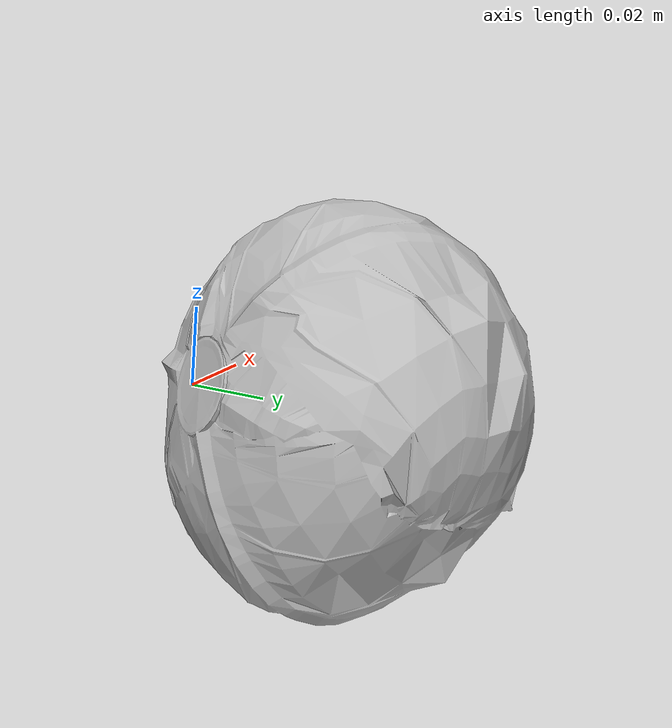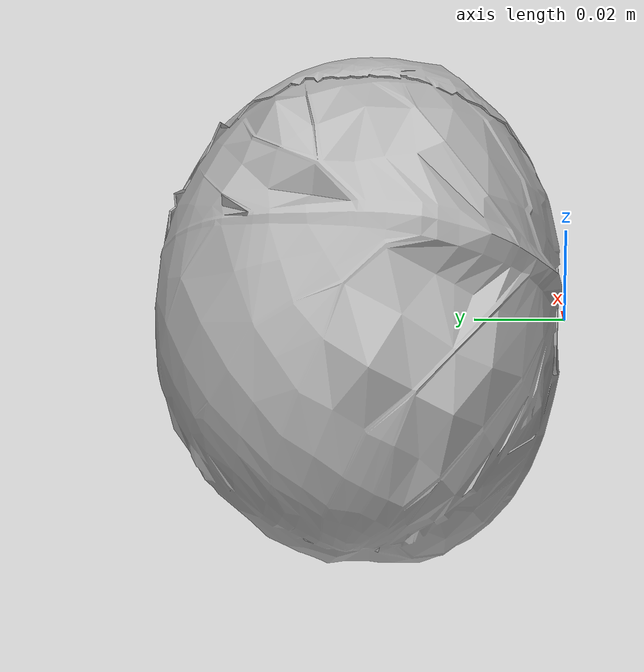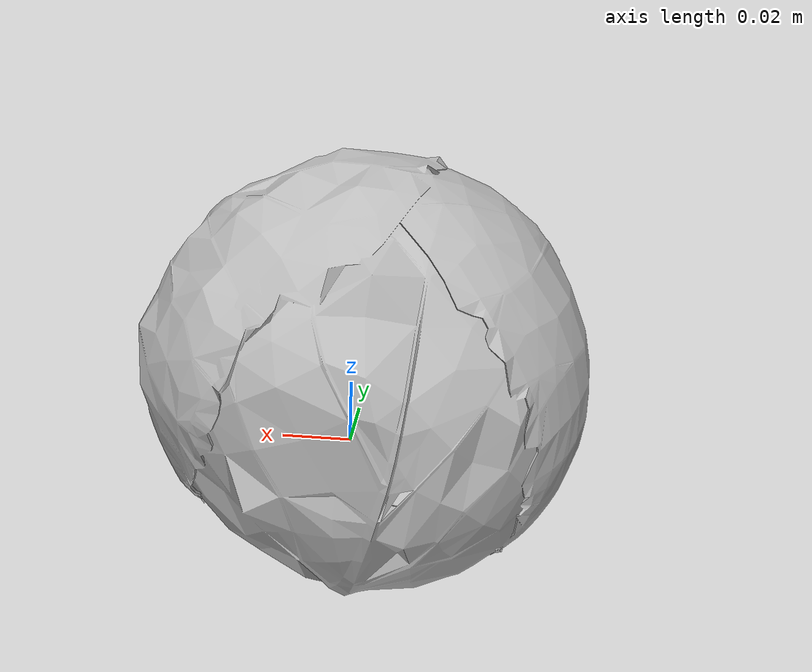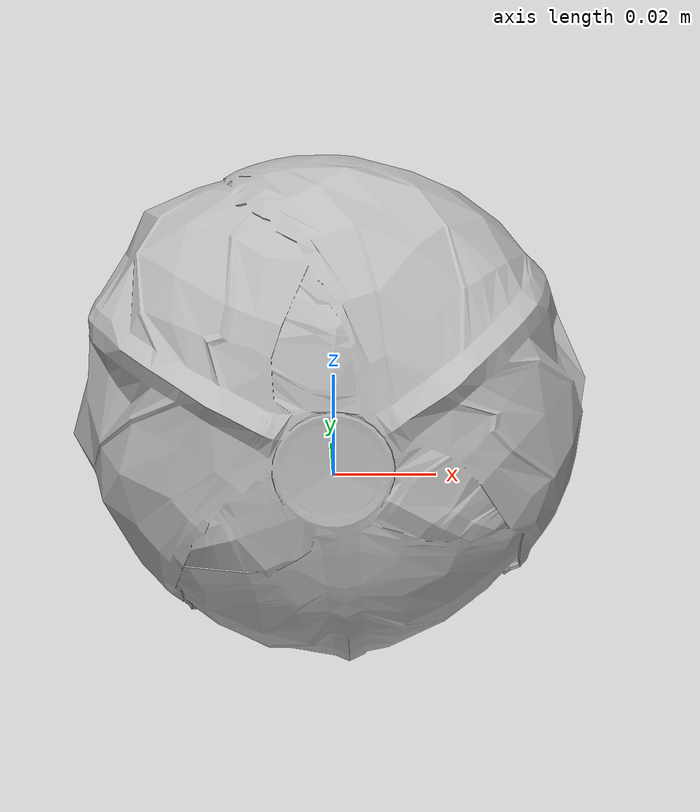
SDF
<?xml version='1.0'?>
<sdf version="1.4">
    <model name="cabbage">
        <link name="link">
            <inertial>
                <!-- set right values -->
                <mass>1</mass>
                <inertia>
                    <ixx>0.001</ixx>
                    <ixy>0.0</ixy>
                    <ixz>0.0</ixz>
                    <iyy>0.001</iyy>
                    <iyz>0.0</iyz>
                    <izz>0.001</izz>
                </inertia>
            </inertial>
            <collision name="collision">
                <geometry>
                    <mesh>
                        <scale>0.001 0.001 0.001</scale>
                        <uri>model://cabbage/cabbage_single.dae</uri>
                    </mesh>
                </geometry>
                <!-- ref: https://qiita.com/Yuya-Shimizu/items/f1a22d430a3f6343b3e7 -->
                <surface>
                    <friction>
                        <ode>
                            <mu>0.8</mu>
                            <mu2>0.8</mu2>
                        </ode>
                    </friction>
                    <contact>
                        <ode>
                            <max_vel>0.1</max_vel>
                            <min_depth>0.0001</min_depth>
                        </ode>
                    </contact>
                </surface>
            </collision>
            <visual name="visual">
                <geometry>
                    <mesh>
                        <scale>0.001 0.001 0.001</scale>
                        <uri>model://cabbage/cabbage_single.dae</uri>
                    </mesh>
                </geometry>
                <material>
                    <script>
                        <uri>model://cabbage/texture.material</uri>
                        <name>CabbageTexture</name>
                    </script>
                </material>
            </visual>
        </link>
    </model>
</sdf>
